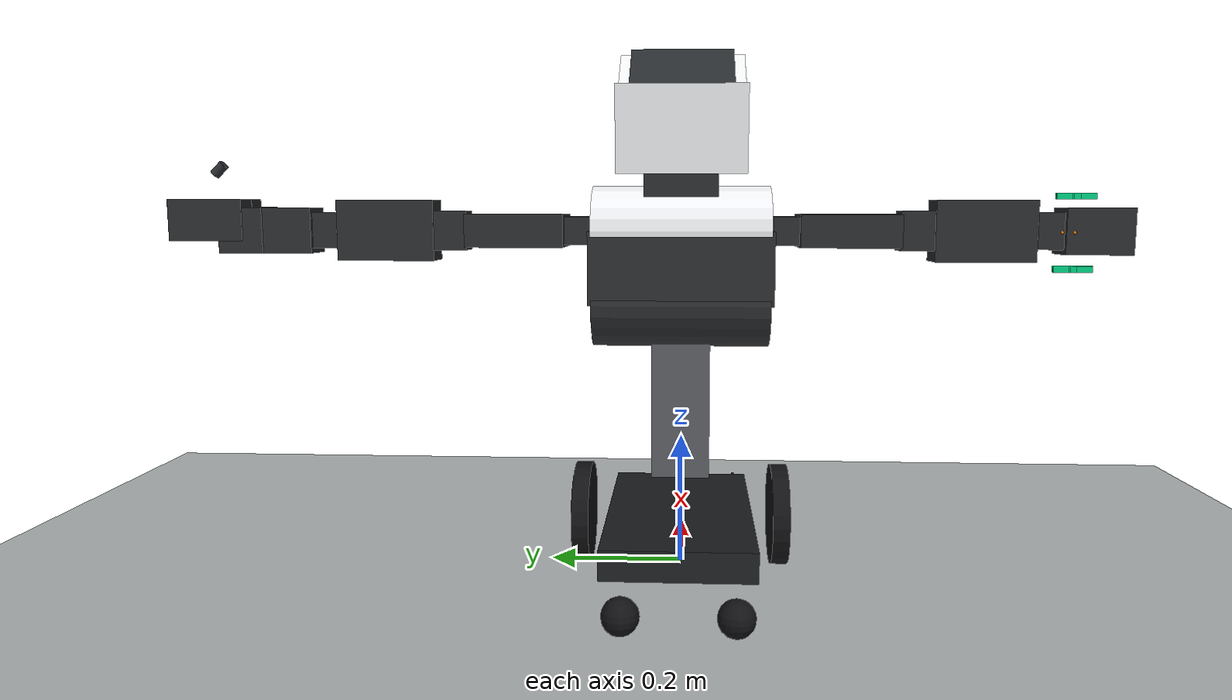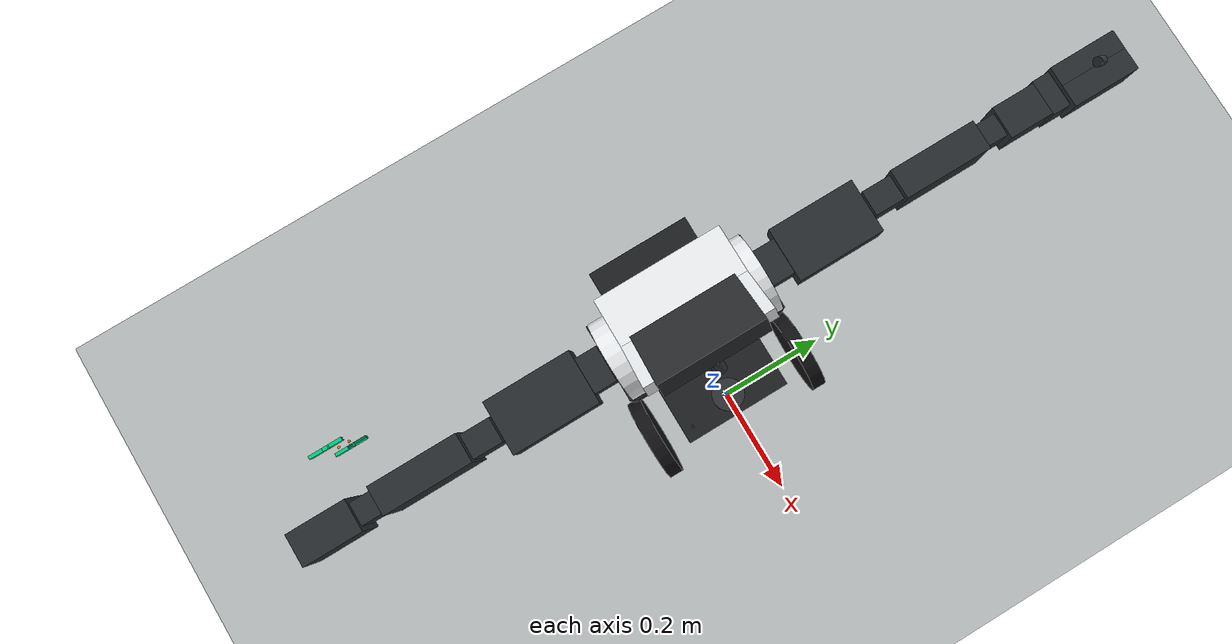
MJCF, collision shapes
<?xml version='1.0' encoding='utf-8'?>
<mujoco model="Nori wheel dynamics / lift-braked development bench">
  <compiler angle="radian" />
  <visual>
    <global azimuth="135" elevation="-20" offwidth="1280" offheight="900" />
    <headlight ambient="0.5 0.5 0.5" diffuse="0.75 0.75 0.75" specular="0.12 0.12 0.12" />
    <rgba haze="0.94 0.95 0.96 1" />
    <quality shadowsize="4096" offsamples="4" />
  </visual>
  <asset>
    <texture type="skybox" builtin="gradient" rgb1="0.99 0.99 0.97" rgb2="0.86 0.9 0.94" width="512" height="3072" />
    <texture name="checkerboard_texture" type="2d" builtin="checker" rgb1="0.94 0.94 0.91" rgb2="0.5 0.54 0.57" width="512" height="512" />
    <material name="checkerboard_material" texture="checkerboard_texture" texuniform="true" texrepeat="2 2" reflectance="0.03" shininess="0.08" specular="0.08" />
    <mesh name="base_shell" content_type="model/stl" file="source/nori_description/meshes/visual/base_shell.stl" scale="0.001 0.001 0.001" smoothnormal="true" />
    <mesh name="shoulder_pitch_mirrored" content_type="model/stl" file="source/nori_description/meshes/visual/shoulder_pitch_mirrored.stl" scale="0.001 0.001 0.001" smoothnormal="true" />
    <mesh name="shoulder_roll_mirrored" content_type="model/stl" file="source/nori_description/meshes/visual/shoulder_roll_mirrored.stl" scale="0.001 0.001 0.001" smoothnormal="true" />
    <mesh name="bicep_yaw_mirrored" content_type="model/stl" file="source/nori_description/meshes/visual/bicep_yaw_mirrored.stl" scale="0.001 0.001 0.001" smoothnormal="true" />
    <mesh name="elbow_pitch_mirrored" content_type="model/stl" file="source/nori_description/meshes/visual/elbow_pitch_mirrored.stl" scale="0.001 0.001 0.001" smoothnormal="true" />
    <mesh name="forearm_yaw_mirrored" content_type="model/stl" file="source/nori_description/meshes/visual/forearm_yaw_mirrored.stl" scale="0.001 0.001 0.001" smoothnormal="true" />
    <mesh name="wrist_pitch_mirrored" content_type="model/stl" file="source/nori_description/meshes/visual/wrist_pitch_mirrored.stl" scale="0.001 0.001 0.001" smoothnormal="true" />
    <mesh name="wrist_roll_mirrored" content_type="model/stl" file="source/nori_description/meshes/visual/wrist_roll_mirrored.stl" scale="0.001 0.001 0.001" smoothnormal="true" />
    <mesh name="gripper_r_mirrored" content_type="model/stl" file="source/nori_description/meshes/visual/gripper_r_mirrored.stl" scale="0.001 0.001 0.001" smoothnormal="true" />
    <mesh name="left_camera_mount_mirrored" content_type="model/stl" file="source/nori_description/meshes/visual/camera_mounts/left_camera_mount_mirrored.stl" scale="0.001 0.001 0.001" smoothnormal="true" />
    <mesh name="gripper_l_mirrored" content_type="model/stl" file="source/nori_description/meshes/visual/gripper_l_mirrored.stl" scale="0.001 0.001 0.001" smoothnormal="true" />
    <mesh name="shoulder_pitch" content_type="model/stl" file="source/nori_description/meshes/visual/shoulder_pitch.stl" scale="0.001 0.001 0.001" smoothnormal="true" />
    <mesh name="shoulder_roll" content_type="model/stl" file="source/nori_description/meshes/visual/shoulder_roll.stl" scale="0.001 0.001 0.001" smoothnormal="true" />
    <mesh name="bicep_yaw" content_type="model/stl" file="source/nori_description/meshes/visual/bicep_yaw.stl" scale="0.001 0.001 0.001" smoothnormal="true" />
    <mesh name="elbow_pitch" content_type="model/stl" file="source/nori_description/meshes/visual/elbow_pitch.stl" scale="0.001 0.001 0.001" smoothnormal="true" />
    <mesh name="forearm_yaw" content_type="model/stl" file="source/nori_description/meshes/visual/forearm_yaw.stl" scale="0.001 0.001 0.001" smoothnormal="true" />
    <mesh name="wrist_pitch" content_type="model/stl" file="source/nori_description/meshes/visual/wrist_pitch.stl" scale="0.001 0.001 0.001" smoothnormal="true" />
    <mesh name="wrist_roll" content_type="model/stl" file="source/nori_description/meshes/visual/wrist_roll.stl" scale="0.001 0.001 0.001" smoothnormal="true" />
    <mesh name="gripper_r" content_type="model/stl" file="source/nori_description/meshes/visual/gripper_r.stl" scale="0.001 0.001 0.001" smoothnormal="true" />
    <mesh name="right_camera_mount_mirrored" content_type="model/stl" file="source/nori_description/meshes/visual/camera_mounts/right_camera_mount_mirrored.stl" scale="0.001 0.001 0.001" smoothnormal="true" />
    <mesh name="gripper_l" content_type="model/stl" file="source/nori_description/meshes/visual/gripper_l.stl" scale="0.001 0.001 0.001" smoothnormal="true" />
    <mesh name="RPLiDarC1" content_type="model/stl" file="source/nori_description/meshes/visual/RPLiDarC1.stl" scale="0.001 0.001 0.001" smoothnormal="true" />
    <mesh name="lehisto_part_00" file="source/nori/lehisto_meshes/lehisto_part_00.stl" smoothnormal="true" />
    <mesh name="lehisto_part_01" file="source/nori/lehisto_meshes/lehisto_part_01.stl" smoothnormal="true" />
    <mesh name="lehisto_part_02" file="source/nori/lehisto_meshes/lehisto_part_02.stl" smoothnormal="true" />
    <mesh name="lehisto_part_03" file="source/nori/lehisto_meshes/lehisto_part_03.stl" smoothnormal="true" />
    <mesh name="lehisto_part_04" file="source/nori/lehisto_meshes/lehisto_part_04.stl" smoothnormal="true" />
    <mesh name="lehisto_part_05" file="source/nori/lehisto_meshes/lehisto_part_05.stl" smoothnormal="true" />
    <mesh name="lehisto_part_06" file="source/nori/lehisto_meshes/lehisto_part_06.stl" smoothnormal="true" />
    <mesh name="lehisto_part_07" file="source/nori/lehisto_meshes/lehisto_part_07.stl" smoothnormal="true" />
    <mesh name="lehisto_part_08" file="source/nori/lehisto_meshes/lehisto_part_08.stl" smoothnormal="true" />
    <mesh name="lehisto_part_09" file="source/nori/lehisto_meshes/lehisto_part_09.stl" smoothnormal="true" />
    <mesh name="lehisto_part_10" file="source/nori/lehisto_meshes/lehisto_part_10.stl" smoothnormal="true" />
    <mesh name="lehisto_part_11" file="source/nori/lehisto_meshes/lehisto_part_11.stl" smoothnormal="true" />
    <mesh name="lehisto_part_12" file="source/nori/lehisto_meshes/lehisto_part_12.stl" smoothnormal="true" />
    <mesh name="lehisto_part_13" file="source/nori/lehisto_meshes/lehisto_part_13.stl" smoothnormal="true" />
    <mesh name="lehisto_part_14" file="source/nori/lehisto_meshes/lehisto_part_14.stl" smoothnormal="true" />
    <mesh name="lehisto_part_15" file="source/nori/lehisto_meshes/lehisto_part_15.stl" smoothnormal="true" />
    <mesh name="lehisto_part_16" file="source/nori/lehisto_meshes/lehisto_part_16.stl" smoothnormal="true" />
    <mesh name="lehisto_part_17" file="source/nori/lehisto_meshes/lehisto_part_17.stl" smoothnormal="true" />
    <mesh name="lehisto_part_18" file="source/nori/lehisto_meshes/lehisto_part_18.stl" smoothnormal="true" />
    <mesh name="lehisto_part_19" file="source/nori/lehisto_meshes/lehisto_part_19.stl" smoothnormal="true" />
    <mesh name="lehisto_part_20" file="source/nori/lehisto_meshes/lehisto_part_20.stl" smoothnormal="true" />
    <mesh name="lehisto_part_21" file="source/nori/lehisto_meshes/lehisto_part_21.stl" smoothnormal="true" />
    <mesh name="lehisto_part_22" file="source/nori/lehisto_meshes/lehisto_part_22.stl" smoothnormal="true" />
    <mesh name="lehisto_part_23" file="source/nori/lehisto_meshes/lehisto_part_23.stl" smoothnormal="true" />
    <mesh name="lehisto_part_24" file="source/nori/lehisto_meshes/lehisto_part_24.stl" smoothnormal="true" />
    <mesh name="lehisto_part_25" file="source/nori/lehisto_meshes/lehisto_part_25.stl" smoothnormal="true" />
    <mesh name="lehisto_part_26" file="source/nori/lehisto_meshes/lehisto_part_26.stl" smoothnormal="true" />
    <mesh name="lehisto_part_27" file="source/nori/lehisto_meshes/lehisto_part_27.stl" smoothnormal="true" />
    <mesh name="lehisto_part_28" file="source/nori/lehisto_meshes/lehisto_part_28.stl" smoothnormal="true" />
    <mesh name="lehisto_part_29" file="source/nori/lehisto_meshes/lehisto_part_29.stl" smoothnormal="true" />
    <mesh name="lehisto_part_30" file="source/nori/lehisto_meshes/lehisto_part_30.stl" smoothnormal="true" />
    <mesh name="lehisto_part_31" file="source/nori/lehisto_meshes/lehisto_part_31.stl" smoothnormal="true" />
    <mesh name="lehisto_part_32" file="source/nori/lehisto_meshes/lehisto_part_32.stl" smoothnormal="true" />
    <mesh name="lehisto_part_33" file="source/nori/lehisto_meshes/lehisto_part_33.stl" smoothnormal="true" />
    <mesh name="lehisto_part_34" file="source/nori/lehisto_meshes/lehisto_part_34.stl" smoothnormal="true" />
    <mesh name="lehisto_part_35" file="source/nori/lehisto_meshes/lehisto_part_35.stl" smoothnormal="true" />
    <mesh name="lehisto_part_36" file="source/nori/lehisto_meshes/lehisto_part_36.stl" smoothnormal="true" />
    <mesh name="lehisto_part_37" file="source/nori/lehisto_meshes/lehisto_part_37.stl" smoothnormal="true" />
    <mesh name="lehisto_part_38" file="source/nori/lehisto_meshes/lehisto_part_38.stl" smoothnormal="true" />
    <mesh name="lehisto_part_39" file="source/nori/lehisto_meshes/lehisto_part_39.stl" smoothnormal="true" />
    <mesh name="lehisto_part_40" file="source/nori/lehisto_meshes/lehisto_part_40.stl" smoothnormal="true" />
    <mesh name="lehisto_part_41" file="source/nori/lehisto_meshes/lehisto_part_41.stl" smoothnormal="true" />
    <mesh name="lehisto_part_42" file="source/nori/lehisto_meshes/lehisto_part_42.stl" smoothnormal="true" />
    <mesh name="lehisto_part_43" file="source/nori/lehisto_meshes/lehisto_part_43.stl" smoothnormal="true" />
    <mesh name="lehisto_part_44" file="source/nori/lehisto_meshes/lehisto_part_44.stl" smoothnormal="true" />
    <mesh name="nori_groove_a_slide_0" vertex="0.04646269 -0.1211885 0.09284547 0.042 -0.1211885 0.0908 0.05 -0.1211885 0.0908 0.04646269 -0.1021885 0.09284547 0.042 -0.1021885 0.0908 0.05 -0.1021885 0.0908" />
    <mesh name="nori_groove_a_slide_1" vertex="0.04646269 -0.1211885 0.09284547 0.05 -0.1211885 0.0908 0.05 -0.1211885 0.0958 0.04646269 -0.1021885 0.09284547 0.05 -0.1021885 0.0908 0.05 -0.1021885 0.0958" />
    <mesh name="nori_groove_a_slide_2" vertex="0.05 -0.1211885 0.0958 0.042 -0.1211885 0.0958 0.04646269 -0.1211885 0.09375453 0.05 -0.1021885 0.0958 0.042 -0.1021885 0.0958 0.04646269 -0.1021885 0.09375453" />
    <mesh name="nori_groove_a_slide_3" vertex="0.05 -0.1211885 0.0958 0.04646269 -0.1211885 0.09375453 0.04671862 -0.1211885 0.09348562 0.05 -0.1021885 0.0958 0.04646269 -0.1021885 0.09375453 0.04671862 -0.1021885 0.09348562" />
    <mesh name="nori_groove_a_slide_4" vertex="0.05 -0.1211885 0.0958 0.04671862 -0.1211885 0.09348562 0.04671862 -0.1211885 0.09311438 0.05 -0.1021885 0.0958 0.04671862 -0.1021885 0.09348562 0.04671862 -0.1021885 0.09311438" />
    <mesh name="nori_groove_a_slide_5" vertex="0.05 -0.1211885 0.0958 0.04671862 -0.1211885 0.09311438 0.04646269 -0.1211885 0.09284547 0.05 -0.1021885 0.0958 0.04671862 -0.1021885 0.09311438 0.04646269 -0.1021885 0.09284547" />
    <mesh name="nori_groove_a_bridge_6" vertex="0.042 -0.1021885 0.0958 0.042 -0.1021885 0.0908 0.05 -0.1021885 0.0908 0.042 -0.1001885 0.0958 0.042 -0.1001885 0.0908 0.05 -0.1001885 0.0908" />
    <mesh name="nori_groove_a_bridge_7" vertex="0.05 -0.1021885 0.0908 0.05 -0.1021885 0.0958 0.042 -0.1021885 0.0958 0.05 -0.1001885 0.0908 0.05 -0.1001885 0.0958 0.042 -0.1001885 0.0958" />
    <mesh name="nori_groove_a_handle_8" vertex="0.05 -0.1001885 0.0958 0.042 -0.1001885 0.0958 0.04423135 -0.1001885 0.09477726 0.05 -0.0921885 0.0958 0.042 -0.0921885 0.0958 0.04423135 -0.0921885 0.09477726" />
    <mesh name="nori_groove_a_handle_9" vertex="0.05 -0.1001885 0.0958 0.04423135 -0.1001885 0.09477726 0.04646269 -0.1001885 0.09375453 0.05 -0.0921885 0.0958 0.04423135 -0.0921885 0.09477726 0.04646269 -0.0921885 0.09375453" />
    <mesh name="nori_groove_a_handle_10" vertex="0.05 -0.1001885 0.0908 0.05 -0.1001885 0.0958 0.04646269 -0.1001885 0.09375453 0.05 -0.0921885 0.0908 0.05 -0.0921885 0.0958 0.04646269 -0.0921885 0.09375453" />
    <mesh name="nori_groove_a_handle_11" vertex="0.05 -0.1001885 0.0908 0.04646269 -0.1001885 0.09375453 0.04671862 -0.1001885 0.09348562 0.05 -0.0921885 0.0908 0.04646269 -0.0921885 0.09375453 0.04671862 -0.0921885 0.09348562" />
    <mesh name="nori_groove_a_handle_12" vertex="0.05 -0.1001885 0.0908 0.04671862 -0.1001885 0.09348562 0.04671862 -0.1001885 0.09311438 0.05 -0.0921885 0.0908 0.04671862 -0.0921885 0.09348562 0.04671862 -0.0921885 0.09311438" />
    <mesh name="nori_groove_a_handle_13" vertex="0.05 -0.1001885 0.0908 0.04671862 -0.1001885 0.09311438 0.04646269 -0.1001885 0.09284547 0.05 -0.0921885 0.0908 0.04671862 -0.0921885 0.09311438 0.04646269 -0.0921885 0.09284547" />
    <mesh name="nori_groove_a_handle_14" vertex="0.05 -0.1001885 0.0908 0.04646269 -0.1001885 0.09284547 0.04423134 -0.1001885 0.09182273 0.05 -0.0921885 0.0908 0.04646269 -0.0921885 0.09284547 0.04423134 -0.0921885 0.09182273" />
    <mesh name="nori_groove_a_handle_15" vertex="0.05 -0.1001885 0.0908 0.04423134 -0.1001885 0.09182273 0.042 -0.1001885 0.0908 0.05 -0.0921885 0.0908 0.04423134 -0.0921885 0.09182273 0.042 -0.0921885 0.0908" />
    <mesh name="nori_groove_a_upper_16" vertex="0.042 -0.0921885 0.0908 0.05 -0.0921885 0.0908 0.05 -0.0921885 0.0958 0.042 -0.0721885 0.0908 0.05 -0.0721885 0.0908 0.05 -0.0721885 0.0958" />
    <mesh name="nori_groove_a_upper_17" vertex="0.05 -0.0921885 0.0958 0.042 -0.0921885 0.0958 0.042 -0.0921885 0.0908 0.05 -0.0721885 0.0958 0.042 -0.0721885 0.0958 0.042 -0.0721885 0.0908" />
    <mesh name="nori_groove_b_slide_0" vertex="-0.05 -0.1211885 0.0908 -0.04199981 -0.1211885 0.0908 -0.04264199 -0.1211885 0.09109434 -0.05 -0.1021885 0.0908 -0.04199981 -0.1021885 0.0908 -0.04264199 -0.1021885 0.09109434" />
    <mesh name="nori_groove_b_slide_1" vertex="-0.05 -0.1211885 0.0908 -0.04264199 -0.1211885 0.09109434 -0.0464625 -0.1211885 0.09284547 -0.05 -0.1021885 0.0908 -0.04264199 -0.1021885 0.09109434 -0.0464625 -0.1021885 0.09284547" />
    <mesh name="nori_groove_b_slide_2" vertex="-0.05 -0.1211885 0.0908 -0.0464625 -0.1211885 0.09284547 -0.04671844 -0.1211885 0.09311438 -0.05 -0.1021885 0.0908 -0.0464625 -0.1021885 0.09284547 -0.04671844 -0.1021885 0.09311438" />
    <mesh name="nori_groove_b_slide_3" vertex="-0.05 -0.1211885 0.0908 -0.04671844 -0.1211885 0.09311438 -0.04671844 -0.1211885 0.09348562 -0.05 -0.1021885 0.0908 -0.04671844 -0.1021885 0.09311438 -0.04671844 -0.1021885 0.09348562" />
    <mesh name="nori_groove_b_slide_4" vertex="-0.05 -0.1211885 0.0908 -0.04671844 -0.1211885 0.09348562 -0.0464625 -0.1211885 0.09375453 -0.05 -0.1021885 0.0908 -0.04671844 -0.1021885 0.09348562 -0.0464625 -0.1021885 0.09375453" />
    <mesh name="nori_groove_b_slide_5" vertex="-0.0464625 -0.1211885 0.09375453 -0.04199981 -0.1211885 0.0958 -0.05 -0.1211885 0.0958 -0.0464625 -0.1021885 0.09375453 -0.04199981 -0.1021885 0.0958 -0.05 -0.1021885 0.0958" />
    <mesh name="nori_groove_b_slide_6" vertex="-0.0464625 -0.1211885 0.09375453 -0.05 -0.1211885 0.0958 -0.05 -0.1211885 0.0908 -0.0464625 -0.1021885 0.09375453 -0.05 -0.1021885 0.0958 -0.05 -0.1021885 0.0908" />
    <mesh name="nori_groove_b_bridge_7" vertex="-0.05 -0.1021885 0.0908 -0.04199981 -0.1021885 0.0908 -0.04199981 -0.1021885 0.0958 -0.05 -0.1001885 0.0908 -0.04199981 -0.1001885 0.0908 -0.04199981 -0.1001885 0.0958" />
    <mesh name="nori_groove_b_bridge_8" vertex="-0.04199981 -0.1021885 0.0958 -0.05 -0.1021885 0.0958 -0.05 -0.1021885 0.0908 -0.04199981 -0.1001885 0.0958 -0.05 -0.1001885 0.0958 -0.05 -0.1001885 0.0908" />
    <mesh name="nori_groove_b_handle_9" vertex="-0.05 -0.1001885 0.0908 -0.04199981 -0.1001885 0.0908 -0.04423127 -0.1001885 0.09182279 -0.05 -0.0921885 0.0908 -0.04199981 -0.0921885 0.0908 -0.04423127 -0.0921885 0.09182279" />
    <mesh name="nori_groove_b_handle_10" vertex="-0.05 -0.1001885 0.0908 -0.04423127 -0.1001885 0.09182279 -0.0464625 -0.1001885 0.09284547 -0.05 -0.0921885 0.0908 -0.04423127 -0.0921885 0.09182279 -0.0464625 -0.0921885 0.09284547" />
    <mesh name="nori_groove_b_handle_11" vertex="-0.05 -0.1001885 0.0958 -0.05 -0.1001885 0.0908 -0.0464625 -0.1001885 0.09284547 -0.05 -0.0921885 0.0958 -0.05 -0.0921885 0.0908 -0.0464625 -0.0921885 0.09284547" />
    <mesh name="nori_groove_b_handle_12" vertex="-0.05 -0.1001885 0.0958 -0.0464625 -0.1001885 0.09284547 -0.04671844 -0.1001885 0.09311438 -0.05 -0.0921885 0.0958 -0.0464625 -0.0921885 0.09284547 -0.04671844 -0.0921885 0.09311438" />
    <mesh name="nori_groove_b_handle_13" vertex="-0.05 -0.1001885 0.0958 -0.04671844 -0.1001885 0.09311438 -0.04671844 -0.1001885 0.09348562 -0.05 -0.0921885 0.0958 -0.04671844 -0.0921885 0.09311438 -0.04671844 -0.0921885 0.09348562" />
    <mesh name="nori_groove_b_handle_14" vertex="-0.05 -0.1001885 0.0958 -0.04671844 -0.1001885 0.09348562 -0.0464625 -0.1001885 0.09375453 -0.05 -0.0921885 0.0958 -0.04671844 -0.0921885 0.09348562 -0.0464625 -0.0921885 0.09375453" />
    <mesh name="nori_groove_b_handle_15" vertex="-0.05 -0.1001885 0.0958 -0.0464625 -0.1001885 0.09375453 -0.04423105 -0.1001885 0.09477731 -0.05 -0.0921885 0.0958 -0.0464625 -0.0921885 0.09375453 -0.04423105 -0.0921885 0.09477731" />
    <mesh name="nori_groove_b_handle_16" vertex="-0.04423105 -0.1001885 0.09477731 -0.04199981 -0.1001885 0.0958 -0.05 -0.1001885 0.0958 -0.04423105 -0.0921885 0.09477731 -0.04199981 -0.0921885 0.0958 -0.05 -0.0921885 0.0958" />
    <mesh name="nori_groove_b_upper_17" vertex="-0.05 -0.0921885 0.0908 -0.04199981 -0.0921885 0.0908 -0.04199981 -0.0921885 0.0958 -0.05 -0.0721885 0.0908 -0.04199981 -0.0721885 0.0908 -0.04199981 -0.0721885 0.0958" />
    <mesh name="nori_groove_b_upper_18" vertex="-0.04199981 -0.0921885 0.0958 -0.05 -0.0921885 0.0958 -0.05 -0.0921885 0.0908 -0.04199981 -0.0721885 0.0958 -0.05 -0.0721885 0.0958 -0.05 -0.0721885 0.0908" />
  </asset>
  <worldbody>
    <light name="key_light" pos="2 -3 4" dir="-0.35 0.45 -1" directional="true" diffuse="0.8 0.8 0.8" specular="0.15 0.15 0.15" castshadow="true" />
    <light name="fill_light" pos="-2 2 3" dir="0.4 -0.35 -1" directional="true" diffuse="0.35 0.4 0.45" specular="0 0 0" castshadow="false" />
    <geom name="checkerboard_floor" type="plane" pos="0 0 0" size="0 0 0.05" material="checkerboard_material" friction="1 0.005 0.0001" />
    <body name="mobile_chassis" pos="0 0 .002">
      <freejoint name="mobile_free" />
      <inertial pos="-.13 0 .12" mass="10" diaginertia=".2 .2 .15" />
      <geom size="0.175 0.1 0.02" pos="-0.133275 0 0.105828" type="box" contype="0" conaffinity="0" group="1" rgba="0.11 0.12 0.13 1" density="0" />
      <geom pos="0.691944 0.216671 0.743839" quat="0 0 0 1" type="mesh" contype="0" conaffinity="0" group="1" rgba="0.8 0.81 0.83 1" density="0" mesh="base_shell" />
      <geom size="0.175 0.1 0.02" pos="-0.133275 0 0.105828" type="box" rgba="0.8 0.81 0.83 0" />
      <geom size="0.0193763 0.0344513 0.2575" pos="-0.113523 0 0.428928" type="box" contype="0" conaffinity="0" group="1" rgba="0.34 0.35 0.37 1" density="0" />
      <geom size="0.0193763 0.0344513 0.2575" pos="-0.113523 0 0.428928" type="box" rgba="0.34 0.35 0.37 0" />
      <geom pos="0.00422459 0 0.175828" quat="1 0 0 0" type="mesh" contype="0" conaffinity="0" group="1" rgba="0.18 0.19 0.21 1" density="0" mesh="RPLiDarC1" />
      <geom size="0.0278 0.02065" pos="0.00422459 0 0.196478" type="cylinder" rgba="0.18 0.19 0.21 0" />
      <geom size="0.002625 0.001925 0.0006" pos="0.0184336 -0.0809077 0.134028" type="box" contype="0" conaffinity="0" group="1" rgba="0.18 0.19 0.21 1" density="0" />
      <geom size="0.002625 0.001925 0.0006" pos="0.0184336 -0.0809077 0.134028" type="box" rgba="0.18 0.19 0.21 0" />
      <body name="left_wheel_link" pos="0 0.15 0.0762">
        <inertial pos="0 0 0" quat="0.5 0.5 -0.5 0.5" mass="0.437" diaginertia="0.00126871 0.000657848 0.000657848" />
        <joint name="left_wheel_joint" damping="0.05" frictionloss="0.02" axis="0 1 0" />
        <geom size="0.0762 0.0127" quat="0.707107 0.707107 0 0" type="cylinder" contype="0" conaffinity="0" group="1" rgba="0.07 0.07 0.08 1" density="0" />
        <geom size="0.0762 0.0127" quat="0.707107 0.707107 0 0" type="cylinder" rgba="0.07 0.07 0.08 0" />
      </body>
      <body name="right_wheel_link" pos="0 -0.15 0.0762">
        <inertial pos="0 0 0" quat="0.5 0.5 -0.5 0.5" mass="0.437" diaginertia="0.00126871 0.000657848 0.000657848" />
        <joint name="right_wheel_joint" damping="0.05" frictionloss="0.02" axis="0 1 0" />
        <geom size="0.0762 0.0127" quat="0.707107 0.707107 0 0" type="cylinder" contype="0" conaffinity="0" group="1" rgba="0.07 0.07 0.08 1" density="0" />
        <geom size="0.0762 0.0127" quat="0.707107 0.707107 0 0" type="cylinder" rgba="0.07 0.07 0.08 0" />
      </body>
      <body name="lift_top_link" pos="-0.113523 0 0.428928">
        <inertial pos="0 0 0.0564311" quat="1 0 -0.000138869 0" mass="4.31" diaginertia="0.0829758 0.0750213 0.0137826" />
        <joint name="lift_extension_joint" type="slide" range="0 0.7" actuatorfrcrange="-1 1" damping="1" />
        <geom size="0.0253762 0.0404513 0.2575" type="box" contype="0" conaffinity="0" group="1" rgba="0.34 0.35 0.37 1" density="0" />
        <geom size="0.0253762 0.0404513 0.2575" type="box" rgba="0.34 0.35 0.37 0" />
        <geom size="0.007 0.01" pos="0.077037 0 0.0798425" quat="0.5 -0.5 0.5 -0.5" type="cylinder" contype="0" conaffinity="0" group="1" rgba="0.18 0.19 0.21 1" density="0" />
        <geom size="0.007 0.01" pos="0.089641 0 0.310492" quat="0.241845 -0.664463 0.664463 -0.241845" type="cylinder" contype="0" conaffinity="0" group="1" rgba="0.18 0.19 0.21 1" density="0" />
        <geom size="0.06 0.125 0.05" pos="0 0 0.0369827" type="box" contype="0" conaffinity="0" group="1" rgba="0.16 0.17 0.18 1" density="0" />
        <geom size="0.061 0.121" pos="0 0 0.0869827" quat="0.707107 0.707107 0 0" type="cylinder" contype="0" conaffinity="0" group="1" rgba="0.93 0.94 0.95 1" density="0" />
        <geom size="0.061 0.121" pos="0 0 -0.0130173" quat="0.707107 0.707107 0 0" type="cylinder" contype="0" conaffinity="0" group="1" rgba="0.16 0.17 0.18 1" density="0" />
        <geom size="0.04 0.05 0.04" pos="0 0 0.126983" type="box" contype="0" conaffinity="0" group="1" rgba="0.16 0.17 0.18 1" density="0" />
        <geom size="0.05 0.088 0.0585" pos="0 0 0.225483" quat="0.999048 0 -0.0436194 0" type="box" contype="0" conaffinity="0" group="1" rgba="0.93 0.94 0.95 1" density="0" />
        <geom size="0.004 0.07128 0.040365" pos="0.048892 0 0.24033" quat="0.999048 0 -0.0436194 0" type="box" contype="0" conaffinity="0" group="1" rgba="0.05 0.06 0.08 1" density="0" />
        <geom size="0.003 0.0099792 0.0222008" pos="0.0513825 0.0313632 0.240548" quat="0.999048 0 -0.0436194 0" type="box" contype="0" conaffinity="0" group="1" rgba="0.99 0.99 0.99 1" density="0" />
        <geom size="0.003 0.0099792 0.0222008" pos="0.0513825 -0.0313632 0.240548" quat="0.999048 0 -0.0436194 0" type="box" contype="0" conaffinity="0" group="1" rgba="0.99 0.99 0.99 1" density="0" />
        <geom size="0.065 0.088 0.008" pos="0.0247872 0 0.286375" quat="0.939693 0 -0.34202 0" type="box" contype="0" conaffinity="0" group="1" rgba="0.93 0.94 0.95 1" density="0" />
        <geom size="0.065 0.073 0.011" pos="0.0324477 0 0.292803" quat="0.939693 0 -0.34202 0" type="box" contype="0" conaffinity="0" group="1" rgba="0.16 0.17 0.18 1" density="0" />
        <body name="left_shoulder_pitch_link" pos="-2.23e-06 0.125 0.0869827" quat="0 0 0 1">
          <inertial pos="0 -0.0235 0" quat="0 0.707107 0 0.707107" mass="0.4" diaginertia="0.000176679 0.00015184 0.000122428" />
          <joint name="left_shoulder_pitch_joint" range="-3.14159 3.14159" actuatorfrcrange="-4 4" damping="0.1" axis="0 1 0" />
          <geom quat="0.707107 -0.707107 0 0" type="mesh" contype="0" conaffinity="0" group="1" rgba="0.16 0.17 0.18 1" density="0" mesh="shoulder_pitch_mirrored" />
          <geom size="0.0278 0.0235 0.01913" pos="0 -0.0235 0" type="box" rgba="0.16 0.17 0.18 0" />
          <body name="left_shoulder_roll_link" pos="0 -0.0567 0" quat="0.707107 -0.707107 0 0">
            <inertial pos="0 0 -0.0455" quat="0.707107 0 0 0.707107" mass="0.252" diaginertia="0.000529493 0.00042525 0.000189293" />
            <joint name="left_shoulder_roll_joint" range="-1.5708 1.5708" actuatorfrcrange="-4 4" damping="0.1" axis="1 0 0" />
            <geom pos="0 0 -0.115" quat="0.707107 -0.707107 0 0" type="mesh" contype="0" conaffinity="0" group="1" rgba="0.16 0.17 0.18 1" density="0" mesh="shoulder_roll_mirrored" />
            <geom size="0.0418 0.0225 0.0675" pos="0 0 -0.0455" type="box" rgba="0.16 0.17 0.18 0" />
            <body name="left_bicep_yaw_link" pos="0 0 -0.115">
              <inertial pos="0 0 -0.04163" mass="0.175" diaginertia="0.000143778 0.000122442 6.40301e-05" />
              <joint name="left_bicep_yaw_joint" range="-3.14159 3.14159" actuatorfrcrange="-4 4" damping="0.1" />
              <geom pos="0 0 -0.06736" quat="0.707107 -0.707107 0 0" type="mesh" contype="0" conaffinity="0" group="1" rgba="0.16 0.17 0.18 1" density="0" mesh="bicep_yaw_mirrored" />
              <geom size="0.01913 0.02705 0.04163" pos="0 0 -0.04163" type="box" rgba="0.16 0.17 0.18 0" />
              <body name="left_elbow_pitch_link" pos="0 0 -0.06736">
                <inertial pos="0 0 -0.0455" mass="0.254" diaginertia="0.000533695 0.000428625 0.000190795" />
                <joint name="left_elbow_pitch_joint" range="-1.5708 1.5708" actuatorfrcrange="-4 4" damping="0.1" axis="0 1 0" />
                <geom pos="0 0 -0.115" quat="0.707107 -0.707107 0 0" type="mesh" contype="0" conaffinity="0" group="1" rgba="0.16 0.17 0.18 1" density="0" mesh="elbow_pitch_mirrored" />
                <geom size="0.0418 0.0225 0.0675" pos="0 0 -0.0455" quat="0.707107 0 0 0.707107" type="box" rgba="0.16 0.17 0.18 0" />
                <body name="left_forearm_yaw_link" pos="0 0 -0.115">
                  <inertial pos="0 0 -0.0282" mass="0.148" diaginertia="7.00652e-05 5.45133e-05 4.61148e-05" />
                  <joint name="left_forearm_yaw_joint" range="-3.14159 3.14159" actuatorfrcrange="-4 4" damping="0.1" />
                  <geom pos="0 0 -0.0462" quat="0.707107 -0.707107 0 0" type="mesh" contype="0" conaffinity="0" group="1" rgba="0.16 0.17 0.18 1" density="0" mesh="forearm_yaw_mirrored" />
                  <geom size="0.0176 0.025 0.0282" pos="0 0 -0.0282" type="box" rgba="0.16 0.17 0.18 0" />
                  <body name="left_wrist_pitch_link" pos="0 0 -0.0462">
                    <inertial pos="0 0 -0.033" mass="0.09" diaginertia="9.08967e-05 7.95e-05 4.88967e-05" />
                    <joint name="left_wrist_pitch_joint" range="-1.5708 1.5708" actuatorfrcrange="-4 4" damping="0.1" axis="0 1 0" />
                    <geom pos="0 0 -0.0678" quat="0.707107 -0.707107 0 0" type="mesh" contype="0" conaffinity="0" group="1" rgba="0.16 0.17 0.18 1" density="0" mesh="wrist_pitch_mirrored" />
                    <geom size="0.025 0.0317 0.045" pos="0 0 -0.033" type="box" rgba="0.16 0.17 0.18 0" />
                    <body name="left_wrist_roll_link" pos="0 0 -0.0678" quat="0 0 0 1">
                      <inertial pos="0 0 -0.0188922" quat="0.707107 0.707107 0 0" mass="0.142" diaginertia="9.27362e-05 8.36868e-05 8.12934e-05" />
                      <joint name="left_wrist_roll_joint" range="-1.5708 1.5708" actuatorfrcrange="-4 4" damping="0.1" axis="-1 0 0" />
                      <geom pos="0.0174 -0.0089 -0.0322843" quat="0 0 -0.707107 0.707107" type="mesh" contype="0" conaffinity="0" group="1" rgba="0.16 0.17 0.18 1" density="0" mesh="wrist_roll_mirrored" />
                      <geom size="0.027625 0.0317 0.0308922" pos="0 0 -0.0188922" type="box" rgba="0.16 0.17 0.18 0" />
                      <geom pos="0.0024 0.0311 -0.0322843" quat="0 0 0 1" type="mesh" contype="0" conaffinity="0" group="1" rgba="0.16 0.17 0.18 1" density="0" mesh="left_camera_mount_mirrored" />
                      <geom size="0.007 0.01" pos="0.0024 0.0845133 -0.0577163" quat="0 0 -0.92388 0.382683" type="cylinder" contype="0" conaffinity="0" group="1" rgba="0.18 0.19 0.21 1" density="0" />
                      <body name="left_gripper_link" pos="0.0174 -0.0089 -0.0322843" quat="0 0 0 1">
                        <inertial pos="0 -0.023 -0.035" mass="0.013" diaginertia="1.53617e-05 1.29697e-05 4.89667e-06" />
                        <joint name="left_gripper_joint" range="0 1.5708" actuatorfrcrange="-4 4" damping="0.1" axis="0 1 0" />
                        <geom quat="0.707107 -0.707107 0 0" type="mesh" contype="0" conaffinity="0" group="1" rgba="0.16 0.17 0.18 1" density="0" mesh="gripper_r_mirrored" />
                        <geom size="0.017 0.029 0.052" pos="0 -0.023 -0.035" type="box" rgba="0.16 0.17 0.18 0" />
                      </body>
                      <body name="left_gripper_idler_link" pos="-0.0126 -0.0089 -0.0322843" quat="0 0 0 1">
                        <inertial pos="0 -0.023 -0.035" mass="0.013" diaginertia="1.53617e-05 1.29697e-05 4.89667e-06" />
                        <joint name="left_gripper_idler_joint" range="-1.5708 0" actuatorfrcrange="-4 4" damping="0.1" axis="0 1 0" />
                        <geom quat="0.707107 -0.707107 0 0" type="mesh" contype="0" conaffinity="0" group="1" rgba="0.16 0.17 0.18 1" density="0" mesh="gripper_l_mirrored" />
                        <geom size="0.017 0.029 0.052" pos="0 -0.023 -0.035" type="box" rgba="0.16 0.17 0.18 0" />
                      </body>
                    </body>
                  </body>
                </body>
              </body>
            </body>
          </body>
        </body>
        <body name="right_shoulder_pitch_link" pos="-2.23e-06 -0.125 0.0869827" quat="0 0 0 1">
          <inertial pos="0 0.0235 0" quat="0 0.707107 0 0.707107" mass="0.4" diaginertia="0.000176679 0.00015184 0.000122428" />
          <joint name="right_shoulder_pitch_joint" range="-3.14159 3.14159" actuatorfrcrange="-4 4" damping="0.1" axis="0 1 0" />
          <geom quat="0.707107 -0.707107 0 0" type="mesh" contype="0" conaffinity="0" group="1" rgba="0.16 0.17 0.18 1" density="0" mesh="shoulder_pitch" />
          <geom size="0.0278 0.0235 0.01913" pos="0 0.0235 0" type="box" rgba="0.16 0.17 0.18 0" />
          <body name="right_shoulder_roll_link" pos="0 0.0567 0" quat="0.707107 0.707107 0 0">
            <inertial pos="0 0 -0.0455" quat="0.707107 0 0 0.707107" mass="0.252" diaginertia="0.000529493 0.00042525 0.000189293" />
            <joint name="right_shoulder_roll_joint" range="-1.5708 1.5708" actuatorfrcrange="-4 4" damping="0.1" axis="1 0 0" />
            <geom pos="0 0 -0.115" quat="0.707107 -0.707107 0 0" type="mesh" contype="0" conaffinity="0" group="1" rgba="0.16 0.17 0.18 1" density="0" mesh="shoulder_roll" />
            <geom size="0.0418 0.0225 0.0675" pos="0 0 -0.0455" type="box" rgba="0.16 0.17 0.18 0" />
            <body name="right_bicep_yaw_link" pos="0 0 -0.115">
              <inertial pos="0 0 -0.04163" mass="0.175" diaginertia="0.000143778 0.000122442 6.40301e-05" />
              <joint name="right_bicep_yaw_joint" range="-3.14159 3.14159" actuatorfrcrange="-4 4" damping="0.1" />
              <geom pos="0 0 -0.06736" quat="0.707107 -0.707107 0 0" type="mesh" contype="0" conaffinity="0" group="1" rgba="0.16 0.17 0.18 1" density="0" mesh="bicep_yaw" />
              <geom size="0.01913 0.02705 0.04163" pos="0 0 -0.04163" type="box" rgba="0.16 0.17 0.18 0" />
              <body name="right_elbow_pitch_link" pos="0 0 -0.06736">
                <inertial pos="0 0 -0.0455" mass="0.254" diaginertia="0.000533695 0.000428625 0.000190795" />
                <joint name="right_elbow_pitch_joint" range="-1.5708 1.5708" actuatorfrcrange="-4 4" damping="0.1" axis="0 1 0" />
                <geom pos="0 0 -0.115" quat="0.707107 -0.707107 0 0" type="mesh" contype="0" conaffinity="0" group="1" rgba="0.16 0.17 0.18 1" density="0" mesh="elbow_pitch" />
                <geom size="0.0418 0.0225 0.0675" pos="0 0 -0.0455" quat="0.707107 0 0 0.707107" type="box" rgba="0.16 0.17 0.18 0" />
                <body name="right_forearm_yaw_link" pos="0 0 -0.115">
                  <inertial pos="0 0 -0.0282" mass="0.148" diaginertia="7.00652e-05 5.45133e-05 4.61148e-05" />
                  <joint name="right_forearm_yaw_joint" range="-3.14159 3.14159" actuatorfrcrange="-4 4" damping="0.1" />
                  <geom pos="0 0 -0.0462" quat="0.707107 -0.707107 0 0" type="mesh" contype="0" conaffinity="0" group="1" rgba="0.16 0.17 0.18 1" density="0" mesh="forearm_yaw" />
                  <geom size="0.0176 0.025 0.0282" pos="0 0 -0.0282" type="box" rgba="0.16 0.17 0.18 0" />
                  <body name="right_wrist_pitch_link" pos="0 0 -0.0462">
                    <inertial pos="0 0 -0.033" mass="0.09" diaginertia="9.08967e-05 7.95e-05 4.88967e-05" />
                    <joint name="right_wrist_pitch_joint" range="-1.5708 1.5708" actuatorfrcrange="-4 4" damping="0.1" axis="0 1 0" />
                    <geom pos="0 0 -0.0678" quat="0.707107 -0.707107 0 0" type="mesh" contype="0" conaffinity="0" group="1" rgba="0.16 0.17 0.18 1" density="0" mesh="wrist_pitch" />
                    <geom size="0.025 0.0317 0.045" pos="0 0 -0.033" type="box" rgba="0.16 0.17 0.18 0" />
                    <body name="right_wrist_roll_link" pos="0 0 -0.0678" quat="0 0 0 1">
                      <joint name="right_wrist_roll_joint" range="-1.5708 1.5708" actuatorfrcrange="-4 4" damping="0.1" axis="-1 0 0" />
                      <body name="lehisto_mount" xyaxes="0 1 0 0 0 -1">
                        <body name="lehisto_jaw_a">
                          <joint name="lehisto_jaw_a_slide" type="slide" axis="1 0 0" range="-0.0355 0" damping="4" armature="0.01" />
                          <geom name="lehisto_part_00" type="mesh" mesh="lehisto_part_00" rgba="0.62 0.65 0.69 1" contype="0" conaffinity="0" density="0" group="1" />
                          <geom name="lehisto_part_14" type="mesh" mesh="lehisto_part_14" rgba="0.22 0.25 0.29 1" contype="0" conaffinity="0" density="0" group="1" />
                          <inertial mass="0.03491576802801459" pos="0.047830192 -0.021105741 0.086572993" fullinertia="3.734459e-05 6.2055737e-06 3.557879e-05 4.438738e-07 -9.7853466e-07 4.4643003e-06" />
                          <geom name="nori_groove_a_slide_0" type="mesh" mesh="nori_groove_a_slide_0" contype="2" conaffinity="1" group="3" density="0" rgba="0 .8 .5 0" condim="4" friction=".6 .005 .0001" solref=".004 1" solimp=".95 .99 .001" />
                          <geom name="nori_groove_a_slide_1" type="mesh" mesh="nori_groove_a_slide_1" contype="2" conaffinity="1" group="3" density="0" rgba="0 .8 .5 0" condim="4" friction=".6 .005 .0001" solref=".004 1" solimp=".95 .99 .001" />
                          <geom name="nori_groove_a_slide_2" type="mesh" mesh="nori_groove_a_slide_2" contype="2" conaffinity="1" group="3" density="0" rgba="0 .8 .5 0" condim="4" friction=".6 .005 .0001" solref=".004 1" solimp=".95 .99 .001" />
                          <geom name="nori_groove_a_slide_3" type="mesh" mesh="nori_groove_a_slide_3" contype="2" conaffinity="1" group="3" density="0" rgba="0 .8 .5 0" condim="4" friction=".6 .005 .0001" solref=".004 1" solimp=".95 .99 .001" />
                          <geom name="nori_groove_a_slide_4" type="mesh" mesh="nori_groove_a_slide_4" contype="2" conaffinity="1" group="3" density="0" rgba="0 .8 .5 0" condim="4" friction=".6 .005 .0001" solref=".004 1" solimp=".95 .99 .001" />
                          <geom name="nori_groove_a_slide_5" type="mesh" mesh="nori_groove_a_slide_5" contype="2" conaffinity="1" group="3" density="0" rgba="0 .8 .5 0" condim="4" friction=".6 .005 .0001" solref=".004 1" solimp=".95 .99 .001" />
                          <geom name="nori_groove_a_bridge_6" type="mesh" mesh="nori_groove_a_bridge_6" contype="2" conaffinity="1" group="3" density="0" rgba="0 .8 .5 0" condim="4" friction=".6 .005 .0001" solref=".004 1" solimp=".95 .99 .001" />
                          <geom name="nori_groove_a_bridge_7" type="mesh" mesh="nori_groove_a_bridge_7" contype="2" conaffinity="1" group="3" density="0" rgba="0 .8 .5 0" condim="4" friction=".6 .005 .0001" solref=".004 1" solimp=".95 .99 .001" />
                          <geom name="nori_groove_a_handle_8" type="mesh" mesh="nori_groove_a_handle_8" contype="2" conaffinity="1" group="3" density="0" rgba="0 .8 .5 0" condim="4" friction=".6 .005 .0001" solref=".004 1" solimp=".95 .99 .001" />
                          <geom name="nori_groove_a_handle_9" type="mesh" mesh="nori_groove_a_handle_9" contype="2" conaffinity="1" group="3" density="0" rgba="0 .8 .5 0" condim="4" friction=".6 .005 .0001" solref=".004 1" solimp=".95 .99 .001" />
                          <geom name="nori_groove_a_handle_10" type="mesh" mesh="nori_groove_a_handle_10" contype="2" conaffinity="1" group="3" density="0" rgba="0 .8 .5 0" condim="4" friction=".6 .005 .0001" solref=".004 1" solimp=".95 .99 .001" />
                          <geom name="nori_groove_a_handle_11" type="mesh" mesh="nori_groove_a_handle_11" contype="2" conaffinity="1" group="3" density="0" rgba="0 .8 .5 0" condim="4" friction=".6 .005 .0001" solref=".004 1" solimp=".95 .99 .001" />
                          <geom name="nori_groove_a_handle_12" type="mesh" mesh="nori_groove_a_handle_12" contype="2" conaffinity="1" group="3" density="0" rgba="0 .8 .5 0" condim="4" friction=".6 .005 .0001" solref=".004 1" solimp=".95 .99 .001" />
                          <geom name="nori_groove_a_handle_13" type="mesh" mesh="nori_groove_a_handle_13" contype="2" conaffinity="1" group="3" density="0" rgba="0 .8 .5 0" condim="4" friction=".6 .005 .0001" solref=".004 1" solimp=".95 .99 .001" />
                          <geom name="nori_groove_a_handle_14" type="mesh" mesh="nori_groove_a_handle_14" contype="2" conaffinity="1" group="3" density="0" rgba="0 .8 .5 0" condim="4" friction=".6 .005 .0001" solref=".004 1" solimp=".95 .99 .001" />
                          <geom name="nori_groove_a_handle_15" type="mesh" mesh="nori_groove_a_handle_15" contype="2" conaffinity="1" group="3" density="0" rgba="0 .8 .5 0" condim="4" friction=".6 .005 .0001" solref=".004 1" solimp=".95 .99 .001" />
                          <geom name="nori_groove_a_upper_16" type="mesh" mesh="nori_groove_a_upper_16" contype="2" conaffinity="1" group="3" density="0" rgba="0 .8 .5 0" condim="4" friction=".6 .005 .0001" solref=".004 1" solimp=".95 .99 .001" />
                          <geom name="nori_groove_a_upper_17" type="mesh" mesh="nori_groove_a_upper_17" contype="2" conaffinity="1" group="3" density="0" rgba="0 .8 .5 0" condim="4" friction=".6 .005 .0001" solref=".004 1" solimp=".95 .99 .001" />
                        </body>
                        <body name="lehisto_jaw_b">
                          <joint name="lehisto_jaw_b_slide" type="slide" axis="-1 0 0" range="-0.0355 0" damping="4" armature="0.01" />
                          <geom name="lehisto_part_15" type="mesh" mesh="lehisto_part_15" rgba="0.22 0.25 0.29 1" contype="0" conaffinity="0" density="0" group="1" />
                          <geom name="lehisto_part_17" type="mesh" mesh="lehisto_part_17" rgba="0.62 0.65 0.69 1" contype="0" conaffinity="0" density="0" group="1" />
                          <inertial mass="0.034916071867066335" pos="-0.047830144 -0.019585143 0.086573049" fullinertia="3.950617e-05 6.2056061e-06 3.7740356e-05 -1.0238908e-06 9.7852395e-07 5.5346519e-06" />
                          <geom name="nori_groove_b_slide_0" type="mesh" mesh="nori_groove_b_slide_0" contype="2" conaffinity="1" group="3" density="0" rgba="0 .8 .5 0" condim="4" friction=".6 .005 .0001" solref=".004 1" solimp=".95 .99 .001" />
                          <geom name="nori_groove_b_slide_1" type="mesh" mesh="nori_groove_b_slide_1" contype="2" conaffinity="1" group="3" density="0" rgba="0 .8 .5 0" condim="4" friction=".6 .005 .0001" solref=".004 1" solimp=".95 .99 .001" />
                          <geom name="nori_groove_b_slide_2" type="mesh" mesh="nori_groove_b_slide_2" contype="2" conaffinity="1" group="3" density="0" rgba="0 .8 .5 0" condim="4" friction=".6 .005 .0001" solref=".004 1" solimp=".95 .99 .001" />
                          <geom name="nori_groove_b_slide_3" type="mesh" mesh="nori_groove_b_slide_3" contype="2" conaffinity="1" group="3" density="0" rgba="0 .8 .5 0" condim="4" friction=".6 .005 .0001" solref=".004 1" solimp=".95 .99 .001" />
                          <geom name="nori_groove_b_slide_4" type="mesh" mesh="nori_groove_b_slide_4" contype="2" conaffinity="1" group="3" density="0" rgba="0 .8 .5 0" condim="4" friction=".6 .005 .0001" solref=".004 1" solimp=".95 .99 .001" />
                          <geom name="nori_groove_b_slide_5" type="mesh" mesh="nori_groove_b_slide_5" contype="2" conaffinity="1" group="3" density="0" rgba="0 .8 .5 0" condim="4" friction=".6 .005 .0001" solref=".004 1" solimp=".95 .99 .001" />
                          <geom name="nori_groove_b_slide_6" type="mesh" mesh="nori_groove_b_slide_6" contype="2" conaffinity="1" group="3" density="0" rgba="0 .8 .5 0" condim="4" friction=".6 .005 .0001" solref=".004 1" solimp=".95 .99 .001" />
                          <geom name="nori_groove_b_bridge_7" type="mesh" mesh="nori_groove_b_bridge_7" contype="2" conaffinity="1" group="3" density="0" rgba="0 .8 .5 0" condim="4" friction=".6 .005 .0001" solref=".004 1" solimp=".95 .99 .001" />
                          <geom name="nori_groove_b_bridge_8" type="mesh" mesh="nori_groove_b_bridge_8" contype="2" conaffinity="1" group="3" density="0" rgba="0 .8 .5 0" condim="4" friction=".6 .005 .0001" solref=".004 1" solimp=".95 .99 .001" />
                          <geom name="nori_groove_b_handle_9" type="mesh" mesh="nori_groove_b_handle_9" contype="2" conaffinity="1" group="3" density="0" rgba="0 .8 .5 0" condim="4" friction=".6 .005 .0001" solref=".004 1" solimp=".95 .99 .001" />
                          <geom name="nori_groove_b_handle_10" type="mesh" mesh="nori_groove_b_handle_10" contype="2" conaffinity="1" group="3" density="0" rgba="0 .8 .5 0" condim="4" friction=".6 .005 .0001" solref=".004 1" solimp=".95 .99 .001" />
                          <geom name="nori_groove_b_handle_11" type="mesh" mesh="nori_groove_b_handle_11" contype="2" conaffinity="1" group="3" density="0" rgba="0 .8 .5 0" condim="4" friction=".6 .005 .0001" solref=".004 1" solimp=".95 .99 .001" />
                          <geom name="nori_groove_b_handle_12" type="mesh" mesh="nori_groove_b_handle_12" contype="2" conaffinity="1" group="3" density="0" rgba="0 .8 .5 0" condim="4" friction=".6 .005 .0001" solref=".004 1" solimp=".95 .99 .001" />
                          <geom name="nori_groove_b_handle_13" type="mesh" mesh="nori_groove_b_handle_13" contype="2" conaffinity="1" group="3" density="0" rgba="0 .8 .5 0" condim="4" friction=".6 .005 .0001" solref=".004 1" solimp=".95 .99 .001" />
                          <geom name="nori_groove_b_handle_14" type="mesh" mesh="nori_groove_b_handle_14" contype="2" conaffinity="1" group="3" density="0" rgba="0 .8 .5 0" condim="4" friction=".6 .005 .0001" solref=".004 1" solimp=".95 .99 .001" />
                          <geom name="nori_groove_b_handle_15" type="mesh" mesh="nori_groove_b_handle_15" contype="2" conaffinity="1" group="3" density="0" rgba="0 .8 .5 0" condim="4" friction=".6 .005 .0001" solref=".004 1" solimp=".95 .99 .001" />
                          <geom name="nori_groove_b_handle_16" type="mesh" mesh="nori_groove_b_handle_16" contype="2" conaffinity="1" group="3" density="0" rgba="0 .8 .5 0" condim="4" friction=".6 .005 .0001" solref=".004 1" solimp=".95 .99 .001" />
                          <geom name="nori_groove_b_upper_17" type="mesh" mesh="nori_groove_b_upper_17" contype="2" conaffinity="1" group="3" density="0" rgba="0 .8 .5 0" condim="4" friction=".6 .005 .0001" solref=".004 1" solimp=".95 .99 .001" />
                          <geom name="nori_groove_b_upper_18" type="mesh" mesh="nori_groove_b_upper_18" contype="2" conaffinity="1" group="3" density="0" rgba="0 .8 .5 0" condim="4" friction=".6 .005 .0001" solref=".004 1" solimp=".95 .99 .001" />
                        </body>
                        <body name="lehisto_pinion">
                          <joint name="lehisto_pinion_joint" axis="0 0 1" pos="0 0 0.065" damping="0.002" armature="0.00001" />
                          <geom name="lehisto_part_31" type="mesh" mesh="lehisto_part_31" rgba="0.62 0.65 0.69 1" contype="0" conaffinity="0" density="0" group="1" />
                          <inertial mass="0.0015917341464554758" pos="-2.0026148e-18 3.1148524e-19 0.064401624" fullinertia="4.1326509e-08 4.1328338e-08 6.4130366e-08 6.9095931e-13 -1.4323488e-22 -8.4958664e-22" />
                        </body>
                        <geom name="lehisto_part_01" type="mesh" mesh="lehisto_part_01" rgba="0.62 0.65 0.69 1" contype="0" conaffinity="0" density="0" group="1" />
                        <geom name="lehisto_part_02" type="mesh" mesh="lehisto_part_02" rgba="0.22 0.25 0.29 1" contype="0" conaffinity="0" density="0" group="1" />
                        <geom name="lehisto_part_03" type="mesh" mesh="lehisto_part_03" rgba="0.22 0.25 0.29 1" contype="0" conaffinity="0" density="0" group="1" />
                        <geom name="lehisto_part_04" type="mesh" mesh="lehisto_part_04" rgba="0.22 0.25 0.29 1" contype="0" conaffinity="0" density="0" group="1" />
                        <geom name="lehisto_part_05" type="mesh" mesh="lehisto_part_05" rgba="0.22 0.25 0.29 1" contype="0" conaffinity="0" density="0" group="1" />
                        <geom name="lehisto_part_06" type="mesh" mesh="lehisto_part_06" rgba="0.62 0.65 0.69 1" contype="0" conaffinity="0" density="0" group="1" />
                        <geom name="lehisto_part_07" type="mesh" mesh="lehisto_part_07" rgba="0.22 0.25 0.29 1" contype="0" conaffinity="0" density="0" group="1" />
                        <geom name="lehisto_part_08" type="mesh" mesh="lehisto_part_08" rgba="0.22 0.25 0.29 1" contype="0" conaffinity="0" density="0" group="1" />
                        <geom name="lehisto_part_09" type="mesh" mesh="lehisto_part_09" rgba="0.22 0.25 0.29 1" contype="0" conaffinity="0" density="0" group="1" />
                        <geom name="lehisto_part_10" type="mesh" mesh="lehisto_part_10" rgba="0.22 0.25 0.29 1" contype="0" conaffinity="0" density="0" group="1" />
                        <geom name="lehisto_part_11" type="mesh" mesh="lehisto_part_11" rgba="0.22 0.25 0.29 1" contype="0" conaffinity="0" density="0" group="1" />
                        <geom name="lehisto_part_12" type="mesh" mesh="lehisto_part_12" rgba="0.22 0.25 0.29 1" contype="0" conaffinity="0" density="0" group="1" />
                        <geom name="lehisto_part_13" type="mesh" mesh="lehisto_part_13" rgba="0.62 0.65 0.69 1" contype="0" conaffinity="0" density="0" group="1" />
                        <geom name="lehisto_part_16" type="mesh" mesh="lehisto_part_16" rgba="0.62 0.65 0.69 1" contype="0" conaffinity="0" density="0" group="1" />
                        <geom name="lehisto_part_18" type="mesh" mesh="lehisto_part_18" rgba="0.62 0.65 0.69 1" contype="0" conaffinity="0" density="0" group="1" />
                        <geom name="lehisto_part_19" type="mesh" mesh="lehisto_part_19" rgba="0.22 0.25 0.29 1" contype="0" conaffinity="0" density="0" group="1" />
                        <geom name="lehisto_part_20" type="mesh" mesh="lehisto_part_20" rgba="0.22 0.25 0.29 1" contype="0" conaffinity="0" density="0" group="1" />
                        <geom name="lehisto_part_21" type="mesh" mesh="lehisto_part_21" rgba="0.08 0.23 0.16 1" contype="0" conaffinity="0" density="0" group="1" />
                        <geom name="lehisto_part_22" type="mesh" mesh="lehisto_part_22" rgba="0.08 0.23 0.16 1" contype="0" conaffinity="0" density="0" group="1" />
                        <geom name="lehisto_part_23" type="mesh" mesh="lehisto_part_23" rgba="0.08 0.23 0.16 1" contype="0" conaffinity="0" density="0" group="1" />
                        <geom name="lehisto_part_24" type="mesh" mesh="lehisto_part_24" rgba="0.08 0.23 0.16 1" contype="0" conaffinity="0" density="0" group="1" />
                        <geom name="lehisto_part_25" type="mesh" mesh="lehisto_part_25" rgba="0.08 0.23 0.16 1" contype="0" conaffinity="0" density="0" group="1" />
                        <geom name="lehisto_part_26" type="mesh" mesh="lehisto_part_26" rgba="0.08 0.23 0.16 1" contype="0" conaffinity="0" density="0" group="1" />
                        <geom name="lehisto_part_27" type="mesh" mesh="lehisto_part_27" rgba="0.08 0.23 0.16 1" contype="0" conaffinity="0" density="0" group="1" />
                        <geom name="lehisto_part_28" type="mesh" mesh="lehisto_part_28" rgba="0.08 0.23 0.16 1" contype="0" conaffinity="0" density="0" group="1" />
                        <geom name="lehisto_part_29" type="mesh" mesh="lehisto_part_29" rgba="0.08 0.23 0.16 1" contype="0" conaffinity="0" density="0" group="1" />
                        <geom name="lehisto_part_30" type="mesh" mesh="lehisto_part_30" rgba="0.08 0.23 0.16 1" contype="0" conaffinity="0" density="0" group="1" />
                        <geom name="lehisto_part_32" type="mesh" mesh="lehisto_part_32" rgba="0.62 0.65 0.69 1" contype="0" conaffinity="0" density="0" group="1" />
                        <geom name="lehisto_part_33" type="mesh" mesh="lehisto_part_33" rgba="0.62 0.65 0.69 1" contype="0" conaffinity="0" density="0" group="1" />
                        <geom name="lehisto_part_34" type="mesh" mesh="lehisto_part_34" rgba="0.62 0.65 0.69 1" contype="0" conaffinity="0" density="0" group="1" />
                        <geom name="lehisto_part_35" type="mesh" mesh="lehisto_part_35" rgba="0.62 0.65 0.69 1" contype="0" conaffinity="0" density="0" group="1" />
                        <geom name="lehisto_part_36" type="mesh" mesh="lehisto_part_36" rgba="0.62 0.65 0.69 1" contype="0" conaffinity="0" density="0" group="1" />
                        <geom name="lehisto_part_37" type="mesh" mesh="lehisto_part_37" rgba="0.62 0.65 0.69 1" contype="0" conaffinity="0" density="0" group="1" />
                        <geom name="lehisto_part_38" type="mesh" mesh="lehisto_part_38" rgba="0.62 0.65 0.69 1" contype="0" conaffinity="0" density="0" group="1" />
                        <geom name="lehisto_part_39" type="mesh" mesh="lehisto_part_39" rgba="0.62 0.65 0.69 1" contype="0" conaffinity="0" density="0" group="1" />
                        <geom name="lehisto_part_40" type="mesh" mesh="lehisto_part_40" rgba="0.62 0.65 0.69 1" contype="0" conaffinity="0" density="0" group="1" />
                        <geom name="lehisto_part_41" type="mesh" mesh="lehisto_part_41" rgba="0.62 0.65 0.69 1" contype="0" conaffinity="0" density="0" group="1" />
                        <geom name="lehisto_part_42" type="mesh" mesh="lehisto_part_42" rgba="0.62 0.65 0.69 1" contype="0" conaffinity="0" density="0" group="1" />
                        <geom name="lehisto_part_43" type="mesh" mesh="lehisto_part_43" rgba="0.62 0.65 0.69 1" contype="0" conaffinity="0" density="0" group="1" />
                        <geom name="lehisto_part_44" type="mesh" mesh="lehisto_part_44" rgba="0.62 0.65 0.69 1" contype="0" conaffinity="0" density="0" group="1" />
                        <site name="nori_right_handle_groove" pos="0 -0.0961885 0.0933" size=".002" rgba="1 .5 0 1" />
                        <site name="nori_right_slide_groove" pos="0 -0.1116885 0.0933" size=".002" rgba="1 .5 0 1" />
                      </body>
                      <inertial mass="0.18520463029320097" pos="-0.057316133 1.5064892e-06 -0.016151394" fullinertia="0.00017275852 0.00022322875 0.00024715825 -7.3355462e-08 -4.5971044e-05 -8.9055981e-08" />
                    </body>
                  </body>
                </body>
              </body>
            </body>
          </body>
        </body>
      </body>
      <body name="lift_middle_link" pos="-0.113523 0 0.428928">
        <inertial pos="0 0 0" mass="2.268" diaginertia="0.0511879 0.0505061 0.00143889" />
        <joint name="lift_middle_joint" type="slide" range="0 0.35" actuatorfrcrange="-1 1" damping="1" />
        <geom size="0.0223763 0.0374512 0.2575" type="box" contype="0" conaffinity="0" group="1" rgba="0.34 0.35 0.37 1" density="0" />
        <geom size="0.0223763 0.0374512 0.2575" type="box" rgba="0.34 0.35 0.37 0" />
      </body>
      <body name="left_ball_caster" pos="-0.273275 0.075 0.0254">
        <joint name="left_caster_rotation" type="ball" damping=".0005" />
        <inertial pos="0 0 0" mass=".05" diaginertia=".0000129 .0000129 .0000129" />
        <geom size="0.0254" pos="0 0 0" contype="0" conaffinity="0" group="1" rgba="0.07 0.07 0.08 1" density="0" friction="1 .005 .0001" />
        <geom size="0.0254" pos="0 0 0" rgba="0.07 0.07 0.08 0" friction="1 .005 .0001" />
      </body>
      <body name="right_ball_caster" pos="-0.273275 -0.075 0.0254">
        <joint name="right_caster_rotation" type="ball" damping=".0005" />
        <inertial pos="0 0 0" mass=".05" diaginertia=".0000129 .0000129 .0000129" />
        <geom size="0.0254" pos="0 0 0" contype="0" conaffinity="0" group="1" rgba="0.07 0.07 0.08 1" density="0" friction="1 .005 .0001" />
        <geom size="0.0254" pos="0 0 0" rgba="0.07 0.07 0.08 0" friction="1 .005 .0001" />
      </body>
    </body>
  </worldbody>
  <equality>
    <joint name="lift_mimic" joint1="lift_middle_joint" joint2="lift_extension_joint" polycoef="0 0.5 0 0 0" />
    <joint name="left_gripper_mimic" joint1="left_gripper_idler_joint" joint2="left_gripper_joint" polycoef="0 -1 0 0 0" />
    <joint name="lehisto_jaw_sync" joint1="lehisto_jaw_b_slide" joint2="lehisto_jaw_a_slide" polycoef="0 1 0 0 0" />
    <joint name="lehisto_rack_pinion" joint1="lehisto_pinion_joint" joint2="lehisto_jaw_a_slide" polycoef="0 138.888888889 0 0 0" />
    <joint name="TEST_FIXTURE_lift_brake" joint1="lift_extension_joint" polycoef=".25 0 0 0 0" />
  </equality>
  <actuator>
    <position name="lehisto_grip" joint="lehisto_jaw_a_slide" kp="1500" kv="15" ctrlrange="-0.0355 0" forcerange="-20 20" />
    <velocity name="left_wheel_motor" joint="left_wheel_joint" kv="2" ctrlrange="-5 5" forcerange="-1.5 1.5" />
    <velocity name="right_wheel_motor" joint="right_wheel_joint" kv="2" ctrlrange="-5 5" forcerange="-1.5 1.5" />
    <position name="hold_left_shoulder_pitch_joint" joint="left_shoulder_pitch_joint" kp="120" kv="8" forcerange="-4 4" />
    <position name="hold_left_shoulder_roll_joint" joint="left_shoulder_roll_joint" kp="120" kv="8" forcerange="-4 4" />
    <position name="hold_left_bicep_yaw_joint" joint="left_bicep_yaw_joint" kp="120" kv="8" forcerange="-4 4" />
    <position name="hold_left_elbow_pitch_joint" joint="left_elbow_pitch_joint" kp="120" kv="8" forcerange="-4 4" />
    <position name="hold_left_forearm_yaw_joint" joint="left_forearm_yaw_joint" kp="120" kv="8" forcerange="-4 4" />
    <position name="hold_left_wrist_pitch_joint" joint="left_wrist_pitch_joint" kp="120" kv="8" forcerange="-4 4" />
    <position name="hold_left_wrist_roll_joint" joint="left_wrist_roll_joint" kp="120" kv="8" forcerange="-4 4" />
    <position name="hold_right_shoulder_pitch_joint" joint="right_shoulder_pitch_joint" kp="120" kv="8" forcerange="-4 4" />
    <position name="hold_right_shoulder_roll_joint" joint="right_shoulder_roll_joint" kp="120" kv="8" forcerange="-4 4" />
    <position name="hold_right_bicep_yaw_joint" joint="right_bicep_yaw_joint" kp="120" kv="8" forcerange="-4 4" />
    <position name="hold_right_elbow_pitch_joint" joint="right_elbow_pitch_joint" kp="120" kv="8" forcerange="-4 4" />
    <position name="hold_right_forearm_yaw_joint" joint="right_forearm_yaw_joint" kp="120" kv="8" forcerange="-4 4" />
    <position name="hold_right_wrist_pitch_joint" joint="right_wrist_pitch_joint" kp="120" kv="8" forcerange="-4 4" />
    <position name="hold_right_wrist_roll_joint" joint="right_wrist_roll_joint" kp="120" kv="8" forcerange="-4 4" />
    <position name="hold_left_gripper" joint="left_gripper_joint" kp="30" kv="2" forcerange="-4 4" />
  </actuator>
  <option timestep=".002" integrator="implicitfast" cone="elliptic" iterations="80" />
</mujoco>
